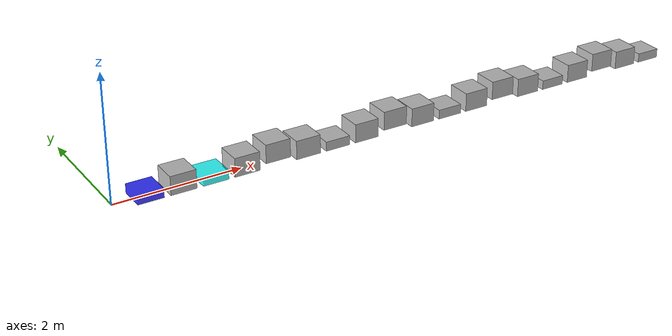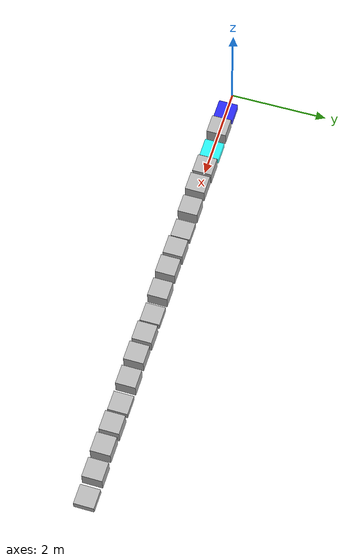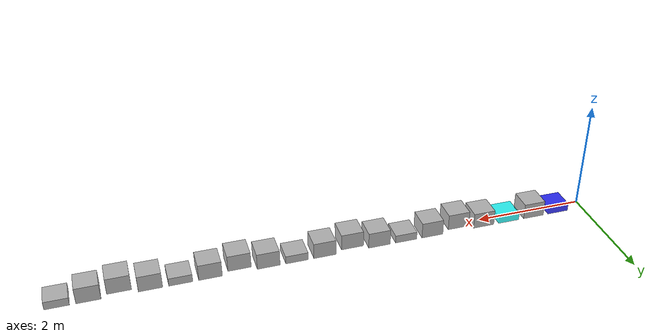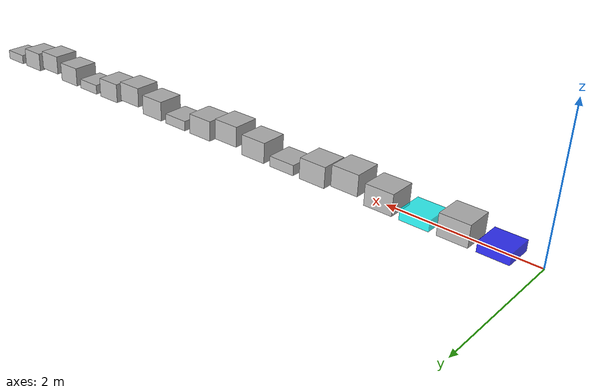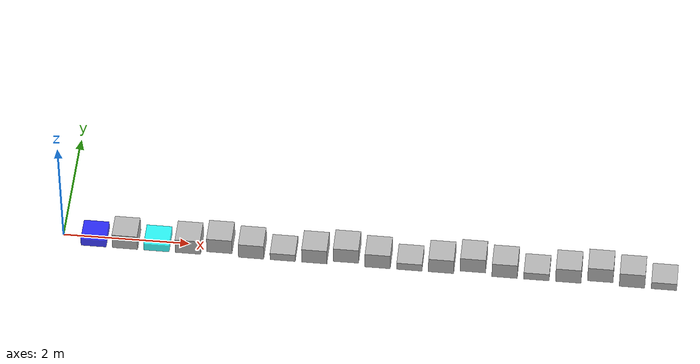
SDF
<sdf version='1.4'>
  <world name='terrain'>

    <model name='Box01'>
      <pose>0.50 0.0 0.075 0 0 0</pose>
      <link name='Box01'>
        <pose>0 0 0 0 0 0</pose>
        <collision name='collision'>
          <geometry>
            <box>
              <size>0.4 0.4 0.15</size>
            </box>
          </geometry>
        </collision>
        <visual name='visual'>
          <geometry>
            <box>
              <size>0.4 0.4 0.15</size>
            </box>
          </geometry>
          <material>
            <diffuse>0 0 1 .8</diffuse>
            <ambient>0 0 1 .8</ambient>
          </material>
        </visual>
      </link>
      <static>1</static>
    </model>

    <model name='Box02'>
      <pose>1.00 0.0 0.15 0 0 0</pose>
      <link name='Box02'>
        <pose>0 0 0 0 0 0</pose>
        <collision name='collision'>
          <geometry>
            <box>
              <size>0.4 0.4 0.3</size>
            </box>
          </geometry>
        </collision>
        <visual name='visual'>
          <geometry>
            <box>
              <size>0.4 0.4 0.3</size>
            </box>
          </geometry>
        </visual>
      </link>
      <static>1</static>
    </model>

    <model name='Box03'>
      <pose>1.50 0.0 0.075 0 0 0</pose>
      <link name='Box03'>
        <pose>0 0 0 0 0 0</pose>
        <collision name='collision'>
          <geometry>
            <box>
              <size>0.4 0.4 0.15</size>
            </box>
          </geometry>
        </collision>
        <visual name='visual'>
          <geometry>
            <box>
              <size>0.4 0.4 0.15</size>
            </box>
          </geometry>
          <material>
            <diffuse>0 1 1 .8</diffuse>
            <ambient>0 1 1 .8</ambient>
          </material>
        </visual>
      </link>
      <static>1</static>
    </model>

    <model name='Box04'>
      <pose>2.00 0.0 0.15 0 0 0</pose>
      <link name='Box04'>
        <pose>0 0 0 0 0 0</pose>
        <collision name='collision'>
          <geometry>
            <box>
              <size>0.4 0.4 0.3</size>
            </box>
          </geometry>
        </collision>
        <visual name='visual'>
          <geometry>
            <box>
              <size>0.4 0.4 0.3</size>
            </box>
          </geometry>
        </visual>
      </link>
      <static>1</static>
    </model>

    <model name='Box05'>
      <pose>2.50 0.0 0.225 0 0 0</pose>
      <link name='Box05'>
        <pose>0 0 0 0 0 0</pose>
        <collision name='collision'>
          <geometry>
            <box>
              <size>0.4 0.4 0.45</size>
            </box>
          </geometry>
        </collision>
        <visual name='visual'>
          <geometry>
            <box>
              <size>0.4 0.4 0.3</size>
            </box>
          </geometry>
        </visual>
      </link>
      <static>1</static>
    </model>

    <model name='Box06'>
      <pose>3.00 0.0 0.15 0 0 0</pose>
      <link name='Box06'>
        <pose>0 0 0 0 0 0</pose>
        <collision name='collision'>
          <geometry>
            <box>
              <size>0.4 0.4 0.3</size>
            </box>
          </geometry>
        </collision>
        <visual name='visual'>
          <geometry>
            <box>
              <size>0.4 0.4 0.3</size>
            </box>
          </geometry>
        </visual>
      </link>
      <static>1</static>
    </model>

    <model name='Box07'>
      <pose>3.50 0.0 0.075 0 0 0</pose>
      <link name='Box07'>
        <pose>0 0 0 0 0 0</pose>
        <collision name='collision'>
          <geometry>
            <box>
              <size>0.4 0.4 0.15</size>
            </box>
          </geometry>
        </collision>
        <visual name='visual'>
          <geometry>
            <box>
              <size>0.4 0.4 0.15</size>
            </box>
          </geometry>
        </visual>
      </link>
      <static>1</static>
    </model>

    <model name='Box08'>
      <pose>4.00 0.0 0.15 0 0 0</pose>
      <link name='Box08'>
        <pose>0 0 0 0 0 0</pose>
        <collision name='collision'>
          <geometry>
            <box>
              <size>0.4 0.4 0.3</size>
            </box>
          </geometry>
        </collision>
        <visual name='visual'>
          <geometry>
            <box>
              <size>0.4 0.4 0.3</size>
            </box>
          </geometry>
        </visual>
      </link>
      <static>1</static>
    </model>

    <model name='Box09'>
      <pose>4.50 0.0 0.225 0 0 0</pose>
      <link name='Box09'>
        <pose>0 0 0 0 0 0</pose>
        <collision name='collision'>
          <geometry>
            <box>
              <size>0.4 0.4 0.45</size>
            </box>
          </geometry>
        </collision>
        <visual name='visual'>
          <geometry>
            <box>
              <size>0.4 0.4 0.3</size>
            </box>
          </geometry>
        </visual>
      </link>
      <static>1</static>
    </model>

    <model name='Box10'>
      <pose>5.00 0.0 0.15 0 0 0</pose>
      <link name='Box10'>
        <pose>0 0 0 0 0 0</pose>
        <collision name='collision'>
          <geometry>
            <box>
              <size>0.4 0.4 0.3</size>
            </box>
          </geometry>
        </collision>
        <visual name='visual'>
          <geometry>
            <box>
              <size>0.4 0.4 0.3</size>
            </box>
          </geometry>
        </visual>
      </link>
      <static>1</static>
    </model>

    <model name='Box11'>
      <pose>5.50 0.0 0.075 0 0 0</pose>
      <link name='Box11'>
        <pose>0 0 0 0 0 0</pose>
        <collision name='collision'>
          <geometry>
            <box>
              <size>0.4 0.4 0.15</size>
            </box>
          </geometry>
        </collision>
        <visual name='visual'>
          <geometry>
            <box>
              <size>0.4 0.4 0.15</size>
            </box>
          </geometry>
        </visual>
      </link>
      <static>1</static>
    </model>

    <model name='Box12'>
      <pose>6.00 0.0 0.15 0 0 0</pose>
      <link name='Box12'>
        <pose>0 0 0 0 0 0</pose>
        <collision name='collision'>
          <geometry>
            <box>
              <size>0.4 0.4 0.3</size>
            </box>
          </geometry>
        </collision>
        <visual name='visual'>
          <geometry>
            <box>
              <size>0.4 0.4 0.3</size>
            </box>
          </geometry>
        </visual>
      </link>
      <static>1</static>
    </model>

    <model name='Box13'>
      <pose>6.50 0.0 0.225 0 0 0</pose>
      <link name='Box13'>
        <pose>0 0 0 0 0 0</pose>
        <collision name='collision'>
          <geometry>
            <box>
              <size>0.4 0.4 0.45</size>
            </box>
          </geometry>
        </collision>
        <visual name='visual'>
          <geometry>
            <box>
              <size>0.4 0.4 0.3</size>
            </box>
          </geometry>
        </visual>
      </link>
      <static>1</static>
    </model>

    <model name='Box14'>
      <pose>7.00 0.0 0.15 0 0 0</pose>
      <link name='Box14'>
        <pose>0 0 0 0 0 0</pose>
        <collision name='collision'>
          <geometry>
            <box>
              <size>0.4 0.4 0.3</size>
            </box>
          </geometry>
        </collision>
        <visual name='visual'>
          <geometry>
            <box>
              <size>0.4 0.4 0.3</size>
            </box>
          </geometry>
        </visual>
      </link>
      <static>1</static>
    </model>

    <model name='Box15'>
      <pose>7.50 0.0 0.075 0 0 0</pose>
      <link name='Box15'>
        <pose>0 0 0 0 0 0</pose>
        <collision name='collision'>
          <geometry>
            <box>
              <size>0.4 0.4 0.15</size>
            </box>
          </geometry>
        </collision>
        <visual name='visual'>
          <geometry>
            <box>
              <size>0.4 0.4 0.15</size>
            </box>
          </geometry>
        </visual>
      </link>
      <static>1</static>
    </model>

    <model name='Box16'>
      <pose>8.00 0.0 0.15 0 0 0</pose>
      <link name='Box16'>
        <pose>0 0 0 0 0 0</pose>
        <collision name='collision'>
          <geometry>
            <box>
              <size>0.4 0.4 0.3</size>
            </box>
          </geometry>
        </collision>
        <visual name='visual'>
          <geometry>
            <box>
              <size>0.4 0.4 0.3</size>
            </box>
          </geometry>
        </visual>
      </link>
      <static>1</static>
    </model>

    <model name='Box17'>
      <pose>8.50 0.0 0.225 0 0 0</pose>
      <link name='Box17'>
        <pose>0 0 0 0 0 0</pose>
        <collision name='collision'>
          <geometry>
            <box>
              <size>0.4 0.4 0.45</size>
            </box>
          </geometry>
        </collision>
        <visual name='visual'>
          <geometry>
            <box>
              <size>0.4 0.4 0.3</size>
            </box>
          </geometry>
        </visual>
      </link>
      <static>1</static>
    </model>

    <model name='Box18'>
      <pose>9.00 0.0 0.15 0 0 0</pose>
      <link name='Box18'>
        <pose>0 0 0 0 0 0</pose>
        <collision name='collision'>
          <geometry>
            <box>
              <size>0.4 0.4 0.3</size>
            </box>
          </geometry>
        </collision>
        <visual name='visual'>
          <geometry>
            <box>
              <size>0.4 0.4 0.3</size>
            </box>
          </geometry>
        </visual>
      </link>
      <static>1</static>
    </model>

    <model name='Box19'>
      <pose>9.50 0.0 0.075 0 0 0</pose>
      <link name='Box19'>
        <pose>0 0 0 0 0 0</pose>
        <collision name='collision'>
          <geometry>
            <box>
              <size>0.4 0.4 0.15</size>
            </box>
          </geometry>
        </collision>
        <visual name='visual'>
          <geometry>
            <box>
              <size>0.4 0.4 0.15</size>
            </box>
          </geometry>
        </visual>
      </link>
      <static>1</static>
    </model>

  </world>
</sdf>
